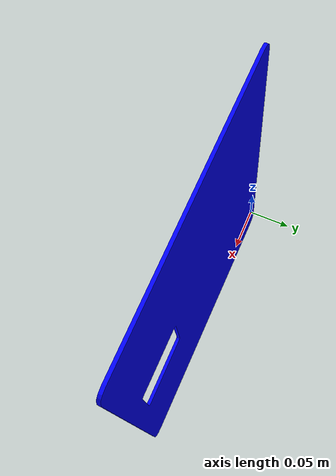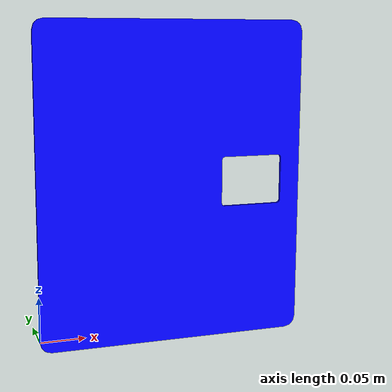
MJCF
<mujoco model="cabinet_door_4">
  <default>
    <default class="visual">
      <geom group="2" type="mesh" contype="0" conaffinity="0"/>
    </default>
    <default class="collision">
      <geom group="3" type="mesh"/>
    </default>
  </default>
  <asset>
    <material name="mtl_cabinet_door_4" specular="0.20000000000000004" shininess="1.0" rgba="0.00000000 0.00000000 1.00000000 1.0"/>
    <mesh file="cabinet_door_4.obj"/>
  </asset>
  <worldbody>
    <body name="cabinet_door_4">
      <geom material="mtl_cabinet_door_4" mesh="cabinet_door_4" class="visual"/>
      <geom mesh="cabinet_door_4" class="collision"/>
    </body>
  </worldbody>
</mujoco>
